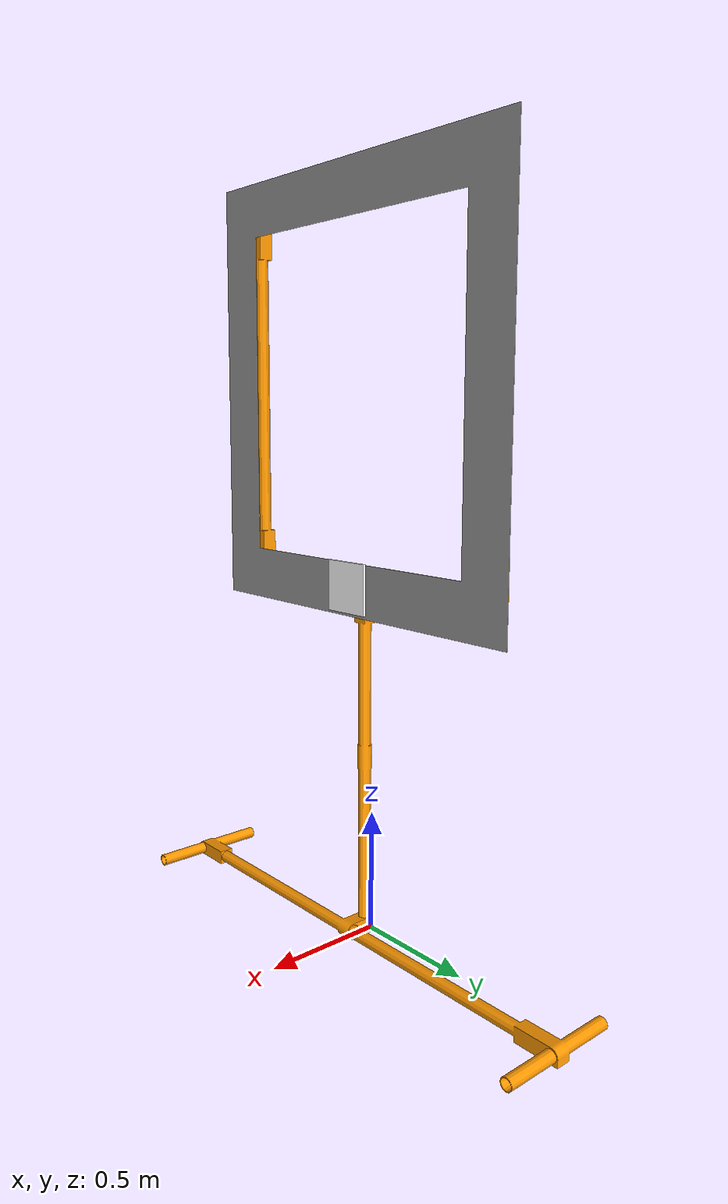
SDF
<?xml version='1.0'?>
<sdf version='1.6'>
  <model name='Aruco_gate_2'>
    <link name="aruco">
      <pose frame=''>0.135 0.00 1.45017 0 -0 1.6</pose>
      <collision name="collision">
        <geometry>
          <box>
            <size>0.2 0.01 0.2</size>
          </box>
        </geometry>
      </collision>
      <visual name="visual">
      <pose frame=''>0 0 0 0 1.57 0</pose>
        <geometry>
          <box>
            <size>0.2 0.01 0.2</size>
          </box>
        </geometry>
        <material>
          <diffuse>1.0 1.0 1.0 1.0</diffuse>
+          <specular>1.0 1.0 1.0 1.0</specular>
+          <pbr>
+            <metal>
+              <albedo_map>model://aruco/materials/textures/marker2.png</albedo_map>
+            </metal>
+          </pbr>
        </material>
      </visual>
    </link>
    <link name='link_0'>
      <pose frame=''>-0.126667 1.11221 0.000173 1.57 -0 0</pose>
      <inertial>
        <mass>1</mass>
        <inertia>
          <ixx>0.166667</ixx>
          <ixy>0</ixy>
          <ixz>0</ixz>
          <iyy>0.166667</iyy>
          <iyz>0</iyz>
          <izz>0.166667</izz>
        </inertia>
        <pose frame=''>0 0 0 0 -0 0</pose>
      </inertial>
      <gravity>1</gravity>
      <self_collide>0</self_collide>
      <kinematic>0</kinematic>
      <visual name='visual'>
        <pose frame=''>0 0 0 0 -0 0</pose>
        <geometry>
          <mesh>
            <uri>model://aruco_gate_1/meshes/base.stl</uri>
            <scale>1 1 1</scale>
          </mesh>
        </geometry>
        <material>
          <lighting>1</lighting>
          <script>
            <uri>file://media/materials/scripts/gazebo.material</uri>
            <name>Gazebo/Grey</name>
          </script>
          <ambient>1 0.6 0 1</ambient>
          <diffuse>1 0.6 0 1</diffuse>
          <specular>0.01 0.01 0.01 1</specular>
          <emissive>0 0 0 1</emissive>
          <shader type='vertex'>
            <normal_map>__default__</normal_map>
          </shader>
        </material>
        <cast_shadows>1</cast_shadows>
        <transparency>0</transparency>
      </visual>
      <collision name='collision'>
        <laser_retro>0</laser_retro>
        <max_contacts>10</max_contacts>
        <pose frame=''>0 0 0 0 -0 0</pose>
        <geometry>
          <mesh>
            <uri>model://aruco_gate_1/meshes/base.stl</uri>
          </mesh>
        </geometry>
        <surface>
          <friction>
            <ode>
              <mu>1</mu>
              <mu2>1</mu2>
              <fdir1>0 0 0</fdir1>
              <slip1>0</slip1>
              <slip2>0</slip2>
            </ode>
            <torsional>
              <coefficient>1</coefficient>
              <patch_radius>0</patch_radius>
              <surface_radius>0</surface_radius>
              <use_patch_radius>1</use_patch_radius>
              <ode>
                <slip>0</slip>
              </ode>
            </torsional>
          </friction>
          <bounce>
            <restitution_coefficient>0</restitution_coefficient>
            <threshold>1e+06</threshold>
          </bounce>
          <contact>
            <collide_without_contact>0</collide_without_contact>
            <collide_without_contact_bitmask>1</collide_without_contact_bitmask>
            <collide_bitmask>1</collide_bitmask>
            <ode>
              <soft_cfm>0</soft_cfm>
              <soft_erp>0.2</soft_erp>
              <kp>1e+13</kp>
              <kd>1</kd>
              <max_vel>0.01</max_vel>
              <min_depth>0</min_depth>
            </ode>
            <bullet>
              <split_impulse>1</split_impulse>
              <split_impulse_penetration_threshold>-0.01</split_impulse_penetration_threshold>
              <soft_cfm>0</soft_cfm>
              <soft_erp>0.2</soft_erp>
              <kp>1e+13</kp>
              <kd>1</kd>
            </bullet>
          </contact>
        </surface>
      </collision>
    </link>
    <link name='link_1'>
      <pose frame=''>0.003333 -0.70 1.40017 0 -0 0</pose>
      <inertial>
        <mass>1</mass>
        <inertia>
          <ixx>0.166667</ixx>
          <ixy>0</ixy>
          <ixz>0</ixz>
          <iyy>0.166667</iyy>
          <iyz>0</iyz>
          <izz>0.166667</izz>
        </inertia>
        <pose frame=''>0 0 0 0 -0 0</pose>
      </inertial>
      <gravity>1</gravity>
      <self_collide>0</self_collide>
      <kinematic>0</kinematic>
      <visual name='visual'>
        <pose frame=''>0 0 0 0 -0 0</pose>
        <geometry>
          <mesh>
            <uri>model://aruco_gate_1/meshes/hoop.stl</uri>
            <scale>1 1 1</scale>
          </mesh>
        </geometry>
        <material>
          <lighting>1</lighting>
          <script>
            <uri>file://media/materials/scripts/gazebo.material</uri>
            <name>Gazebo/Grey</name>
          </script>
          <ambient>1 0.6 0 1</ambient>
          <diffuse>1 0.6 0 1</diffuse>
          <specular>0.01 0.01 0.01 1</specular>
          <emissive>0 0 0 1</emissive>
          <shader type='vertex'>
            <normal_map>__default__</normal_map>
          </shader>
        </material>
        <cast_shadows>1</cast_shadows>
        <transparency>0</transparency>
      </visual>
      <collision name='collision'>
        <laser_retro>0</laser_retro>
        <max_contacts>10</max_contacts>
        <pose frame=''>0 0 0 0 -0 0</pose>
        <geometry>
          <mesh>
            <uri>model://aruco_gate_1/meshes/hoop.stl</uri>
          </mesh>
        </geometry>
        <surface>
          <friction>
            <ode>
              <mu>1</mu>
              <mu2>1</mu2>
              <fdir1>0 0 0</fdir1>
              <slip1>0</slip1>
              <slip2>0</slip2>
            </ode>
            <torsional>
              <coefficient>1</coefficient>
              <patch_radius>0</patch_radius>
              <surface_radius>0</surface_radius>
              <use_patch_radius>1</use_patch_radius>
              <ode>
                <slip>0</slip>
              </ode>
            </torsional>
          </friction>
          <bounce>
            <restitution_coefficient>0</restitution_coefficient>
            <threshold>1e+06</threshold>
          </bounce>
          <contact>
            <collide_without_contact>0</collide_without_contact>
            <collide_without_contact_bitmask>1</collide_without_contact_bitmask>
            <collide_bitmask>1</collide_bitmask>
            <ode>
              <soft_cfm>0</soft_cfm>
              <soft_erp>0.2</soft_erp>
              <kp>1e+13</kp>
              <kd>1</kd>
              <max_vel>0.01</max_vel>
              <min_depth>0</min_depth>
            </ode>
            <bullet>
              <split_impulse>1</split_impulse>
              <split_impulse_penetration_threshold>-0.01</split_impulse_penetration_threshold>
              <soft_cfm>0</soft_cfm>
              <soft_erp>0.2</soft_erp>
              <kp>1e+13</kp>
              <kd>1</kd>
            </bullet>
          </contact>
        </surface>
      </collision>
    </link>
    <link name='link_2'>
      <pose frame=''>0.123333 -0.797794 3.62017 0 1.57 0</pose>
      <inertial>
        <mass>1</mass>
        <inertia>
          <ixx>0.166667</ixx>
          <ixy>0</ixy>
          <ixz>0</ixz>
          <iyy>0.166667</iyy>
          <iyz>0</iyz>
          <izz>0.166667</izz>
        </inertia>
        <pose frame=''>0 0 0 0 -0 0</pose>
      </inertial>
      <gravity>1</gravity>
      <self_collide>0</self_collide>
      <kinematic>0</kinematic>
      <visual name='visual'>
        <pose frame=''>0 0 0 0 -0 0</pose>
        <geometry>
          <mesh>
            <uri>model://aruco_gate_1/meshes/background.stl</uri>
            <scale>1 1 1</scale>
          </mesh>
        </geometry>
        <material>
          <lighting>1</lighting>
          <script>
            <uri>file://media/materials/scripts/gazebo.material</uri>
            <name>Gazebo/Grey</name>
          </script>
          <ambient>0.9 0.9 0.9 1</ambient>
          <diffuse>0.9 0.9 0.9 1</diffuse>
          <specular>0.01 0.01 0.01 1</specular>
          <emissive>0 0 0 1</emissive>
          <shader type='vertex'>
            <normal_map>__default__</normal_map>
          </shader>
        </material>
        <cast_shadows>1</cast_shadows>
        <transparency>0</transparency>
      </visual>
      <collision name='collision'>
        <laser_retro>0</laser_retro>
        <max_contacts>10</max_contacts>
        <pose frame=''>0 0 0 0 -0 0</pose>
        <geometry>
          <mesh>
            <uri>model://aruco_gate_1/meshes/background.stl</uri>
          </mesh>
        </geometry>
        <surface>
          <friction>
            <ode>
              <mu>1</mu>
              <mu2>1</mu2>
              <fdir1>0 0 0</fdir1>
              <slip1>0</slip1>
              <slip2>0</slip2>
            </ode>
            <torsional>
              <coefficient>1</coefficient>
              <patch_radius>0</patch_radius>
              <surface_radius>0</surface_radius>
              <use_patch_radius>1</use_patch_radius>
              <ode>
                <slip>0</slip>
              </ode>
            </torsional>
          </friction>
          <bounce>
            <restitution_coefficient>0</restitution_coefficient>
            <threshold>1e+06</threshold>
          </bounce>
          <contact>
            <collide_without_contact>0</collide_without_contact>
            <collide_without_contact_bitmask>1</collide_without_contact_bitmask>
            <collide_bitmask>1</collide_bitmask>
            <ode>
              <soft_cfm>0</soft_cfm>
              <soft_erp>0.2</soft_erp>
              <kp>1e+13</kp>
              <kd>1</kd>
              <max_vel>0.01</max_vel>
              <min_depth>0</min_depth>
            </ode>
            <bullet>
              <split_impulse>1</split_impulse>
              <split_impulse_penetration_threshold>-0.01</split_impulse_penetration_threshold>
              <soft_cfm>0</soft_cfm>
              <soft_erp>0.2</soft_erp>
              <kp>1e+13</kp>
              <kd>1</kd>
            </bullet>
          </contact>
        </surface>
      </collision>
    </link>
    <static>1</static>
            <plugin filename="ignition-gazebo-pose-publisher-system"
            name="ignition::gazebo::systems::PosePublisher">
                <publish_link_pose>false</publish_link_pose>
                <publish_collision_pose>false</publish_collision_pose>
                <publish_visual_pose>false</publish_visual_pose>
                <publish_nested_model_pose>true</publish_nested_model_pose>
                <publish_model_pose>true</publish_model_pose>
                <use_pose_vector_msg>false</use_pose_vector_msg>
                <static_publisher>false</static_publisher>
                <update_frequency>100</update_frequency>
            </plugin>
  </model>
</sdf>
